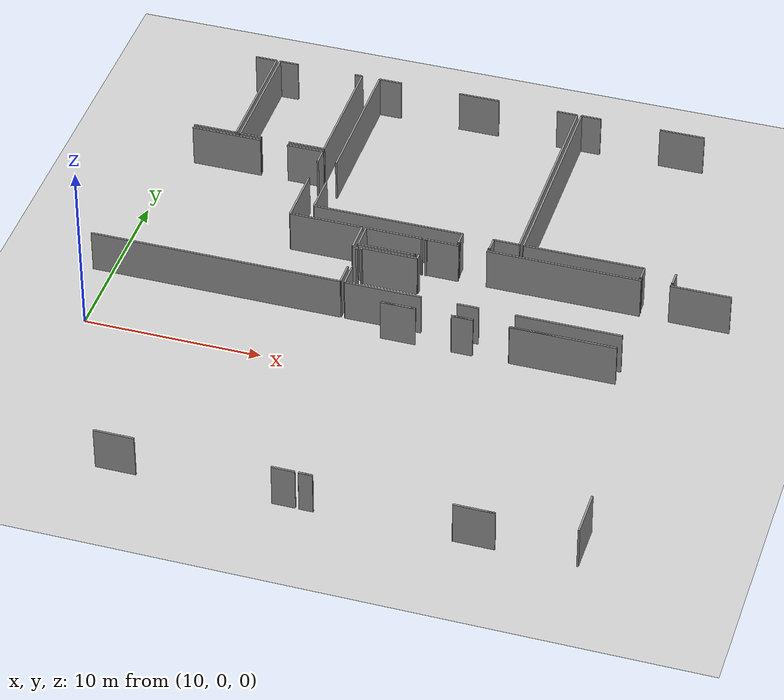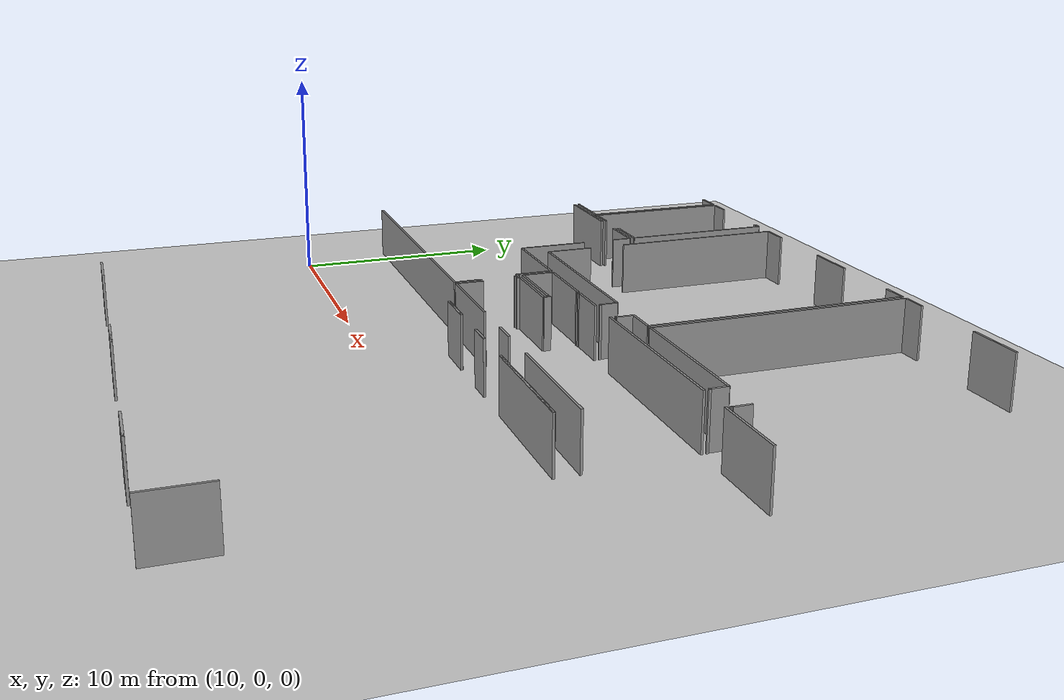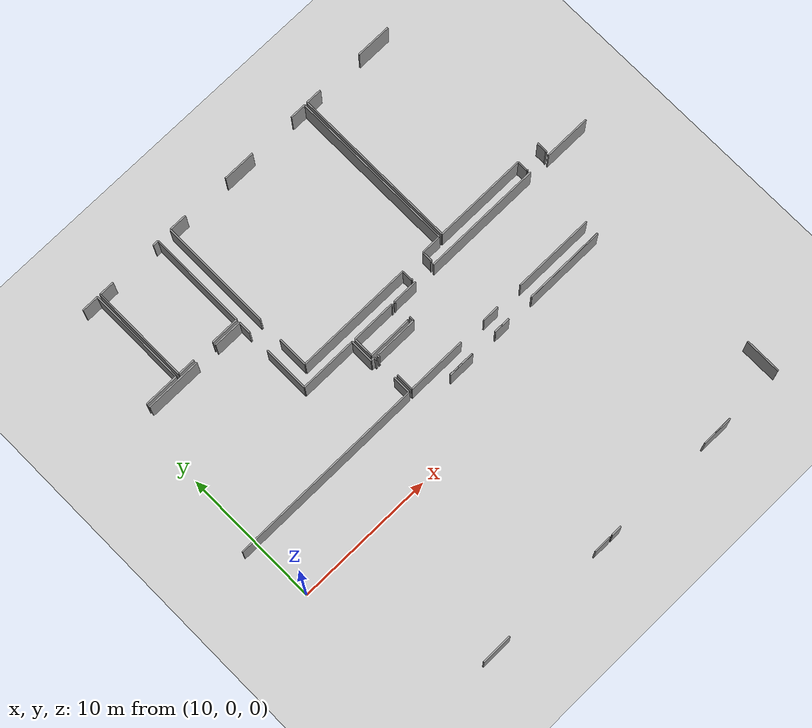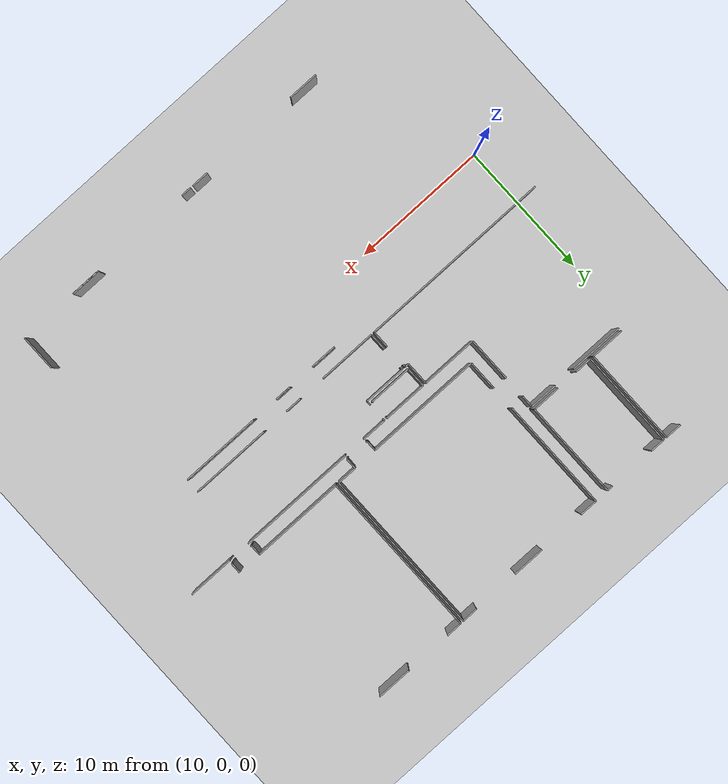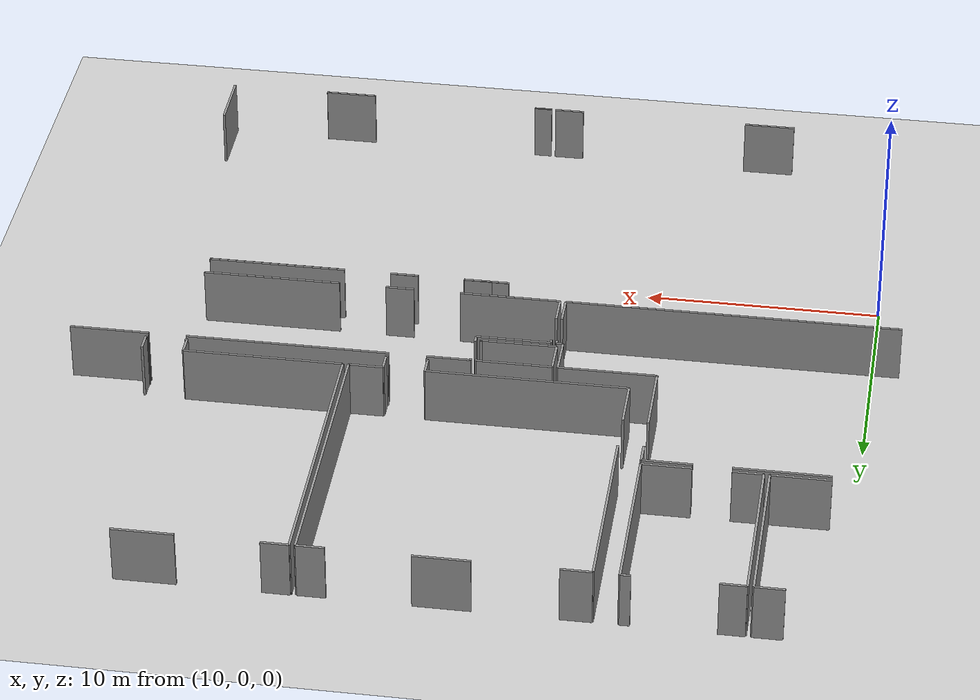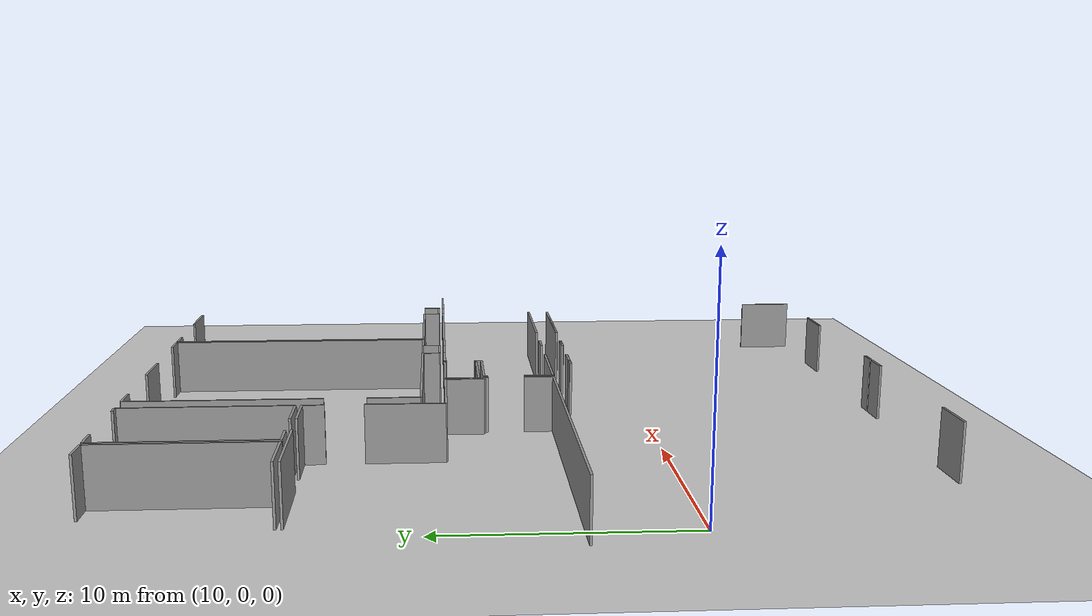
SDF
<sdf version="1.6">
 <world name="default">
  <model name="ground_plane">
   <static>1</static>
   <link name="link">
    <collision name="collision">
     <geometry><plane><normal>0 0 1</normal><size>100 100</size></plane></geometry>
     <surface><friction><ode><mu>100</mu><mu2>50</mu2></ode></friction></surface>
    </collision>
    <visual name="visual">
     <cast_shadows>0</cast_shadows>
     <geometry><plane><normal>0 0 1</normal><size>100 100</size></plane></geometry>
     <material>
      <script><uri>file://media/materials/scripts/gazebo.material</uri><name>Gazebo/Grey</name></script>
     </material>
    </visual>
   </link>
  </model>
  <model name="50010540">
   <static>1</static>
   <link name="Wall_129">
    <collision name="Wall_129_Collision">
     <geometry><box><size>1.23828226785 0.1 2.5</size></box></geometry>
     <pose>0.619141133927 0 1.25 0 0 0</pose>
    </collision>
    <visual name="Wall_129_Visual">
     <pose>0.619141133927 0 1.25 0 0 0</pose>
     <geometry><box><size>1.23828226785 0.1 2.5</size></box></geometry>
     <material>
      <script><uri>file://media/materials/scripts/gazebo.material</uri><name>Gazebo/Grey</name></script>
      <ambient>1 1 1 1</ambient>
     </material>
    </visual>
    <pose>74.7660902337 -0.460510845456 0 0 0 0.0</pose>
   </link>
   <link name="Wall_130">
    <collision name="Wall_130_Collision">
     <geometry><box><size>7.16467425499 0.1 2.5</size></box></geometry>
     <pose>3.5823371275 0 1.25 0 0 0</pose>
    </collision>
    <visual name="Wall_130_Visual">
     <pose>3.5823371275 0 1.25 0 0 0</pose>
     <geometry><box><size>7.16467425499 0.1 2.5</size></box></geometry>
     <material>
      <script><uri>file://media/materials/scripts/gazebo.material</uri><name>Gazebo/Grey</name></script>
      <ambient>1 1 1 1</ambient>
     </material>
    </visual>
    <pose>76.0043725015 -0.460510845456 0 0 0 -1.57079632679</pose>
   </link>
   <link name="Wall_131">
    <collision name="Wall_131_Collision">
     <geometry><box><size>2.51139201891 0.1 2.5</size></box></geometry>
     <pose>1.25569600946 0 1.25 0 0 0</pose>
    </collision>
    <visual name="Wall_131_Visual">
     <pose>1.25569600946 0 1.25 0 0 0</pose>
     <geometry><box><size>2.51139201891 0.1 2.5</size></box></geometry>
     <material>
      <script><uri>file://media/materials/scripts/gazebo.material</uri><name>Gazebo/Grey</name></script>
      <ambient>1 1 1 1</ambient>
     </material>
    </visual>
    <pose>76.0043725015 -7.62518510045 0 0 0 3.14159265359</pose>
   </link>
   <link name="Wall_133">
    <collision name="Wall_133_Collision">
     <geometry><box><size>7.17052120473 0.1 2.5</size></box></geometry>
     <pose>3.58526060236 0 1.25 0 0 0</pose>
    </collision>
    <visual name="Wall_133_Visual">
     <pose>3.58526060236 0 1.25 0 0 0</pose>
     <geometry><box><size>7.17052120473 0.1 2.5</size></box></geometry>
     <material>
      <script><uri>file://media/materials/scripts/gazebo.material</uri><name>Gazebo/Grey</name></script>
      <ambient>1 1 1 1</ambient>
     </material>
    </visual>
    <pose>76.2411739658 -7.63649767711 0 0 0 1.57079632679</pose>
   </link>
   <link name="Wall_134">
    <collision name="Wall_134_Collision">
     <geometry><box><size>1.08664289754 0.1 2.5</size></box></geometry>
     <pose>0.543321448772 0 1.25 0 0 0</pose>
    </collision>
    <visual name="Wall_134_Visual">
     <pose>0.543321448772 0 1.25 0 0 0</pose>
     <geometry><box><size>1.08664289754 0.1 2.5</size></box></geometry>
     <material>
      <script><uri>file://media/materials/scripts/gazebo.material</uri><name>Gazebo/Grey</name></script>
      <ambient>1 1 1 1</ambient>
     </material>
    </visual>
    <pose>76.2411739658 -0.465976472383 0 0 0 0.0</pose>
   </link>
   <link name="Wall_135">
    <collision name="Wall_135_Collision">
     <geometry><box><size>0.429750805544 0.1 2.5</size></box></geometry>
     <pose>0.214875402772 0 1.25 0 0 0</pose>
    </collision>
    <visual name="Wall_135_Visual">
     <pose>0.214875402772 0 1.25 0 0 0</pose>
     <geometry><box><size>0.429750805544 0.1 2.5</size></box></geometry>
     <material>
      <script><uri>file://media/materials/scripts/gazebo.material</uri><name>Gazebo/Grey</name></script>
      <ambient>1 1 1 1</ambient>
     </material>
    </visual>
    <pose>80.7635353709 -0.465976472383 0 0 0 0.0</pose>
   </link>
   <link name="Wall_136">
    <collision name="Wall_136_Collision">
     <geometry><box><size>7.1606068117 0.1 2.5</size></box></geometry>
     <pose>3.58030340585 0 1.25 0 0 0</pose>
    </collision>
    <visual name="Wall_136_Visual">
     <pose>3.58030340585 0 1.25 0 0 0</pose>
     <geometry><box><size>7.1606068117 0.1 2.5</size></box></geometry>
     <material>
      <script><uri>file://media/materials/scripts/gazebo.material</uri><name>Gazebo/Grey</name></script>
      <ambient>1 1 1 1</ambient>
     </material>
    </visual>
    <pose>81.1932861764 -0.465976472383 0 0 0 -1.57079632679</pose>
   </link>
   <link name="Wall_137">
    <collision name="Wall_137_Collision">
     <geometry><box><size>2.0745231876 0.1 2.5</size></box></geometry>
     <pose>1.0372615938 0 1.25 0 0 0</pose>
    </collision>
    <visual name="Wall_137_Visual">
     <pose>1.0372615938 0 1.25 0 0 0</pose>
     <geometry><box><size>2.0745231876 0.1 2.5</size></box></geometry>
     <material>
      <script><uri>file://media/materials/scripts/gazebo.material</uri><name>Gazebo/Grey</name></script>
      <ambient>1 1 1 1</ambient>
     </material>
    </visual>
    <pose>81.1932861764 -7.62658328408 0 0 0 3.14159265359</pose>
   </link>
   <link name="Wall_138">
    <collision name="Wall_138_Collision">
     <geometry><box><size>1.269208139 0.1 2.5</size></box></geometry>
     <pose>0.634604069498 0 1.25 0 0 0</pose>
    </collision>
    <visual name="Wall_138_Visual">
     <pose>0.634604069498 0 1.25 0 0 0</pose>
     <geometry><box><size>1.269208139 0.1 2.5</size></box></geometry>
     <material>
      <script><uri>file://media/materials/scripts/gazebo.material</uri><name>Gazebo/Grey</name></script>
      <ambient>1 1 1 1</ambient>
     </material>
    </visual>
    <pose>77.5103433812 -7.62658328408 0 0 0 -3.13378109491</pose>
   </link>
   <link name="Wall_141">
    <collision name="Wall_141_Collision">
     <geometry><box><size>4.02435381672 0.1 2.5</size></box></geometry>
     <pose>2.01217690836 0 1.25 0 0 0</pose>
    </collision>
    <visual name="Wall_141_Visual">
     <pose>2.01217690836 0 1.25 0 0 0</pose>
     <geometry><box><size>4.02435381672 0.1 2.5</size></box></geometry>
     <material>
      <script><uri>file://media/materials/scripts/gazebo.material</uri><name>Gazebo/Grey</name></script>
      <ambient>1 1 1 1</ambient>
     </material>
    </visual>
    <pose>73.5037846289 -7.8739346794 0 0 0 0.0</pose>
   </link>
   <link name="Wall_142">
    <collision name="Wall_142_Collision">
     <geometry><box><size>2.07820930809 0.1 2.5</size></box></geometry>
     <pose>1.03910465404 0 1.25 0 0 0</pose>
    </collision>
    <visual name="Wall_142_Visual">
     <pose>1.03910465404 0 1.25 0 0 0</pose>
     <geometry><box><size>2.07820930809 0.1 2.5</size></box></geometry>
     <material>
      <script><uri>file://media/materials/scripts/gazebo.material</uri><name>Gazebo/Grey</name></script>
      <ambient>1 1 1 1</ambient>
     </material>
    </visual>
    <pose>79.1192714192 -7.8739346794 0 0 0 0.0</pose>
   </link>
   <link name="Wall_143">
    <collision name="Wall_143_Collision">
     <geometry><box><size>0.914284987957 0.1 2.5</size></box></geometry>
     <pose>0.457142493978 0 1.25 0 0 0</pose>
    </collision>
    <visual name="Wall_143_Visual">
     <pose>0.457142493978 0 1.25 0 0 0</pose>
     <geometry><box><size>0.914284987957 0.1 2.5</size></box></geometry>
     <material>
      <script><uri>file://media/materials/scripts/gazebo.material</uri><name>Gazebo/Grey</name></script>
      <ambient>1 1 1 1</ambient>
     </material>
    </visual>
    <pose>81.1974807273 -7.8739346794 0 0 0 -1.57079632679</pose>
   </link>
   <link name="Wall_144">
    <collision name="Wall_144_Collision">
     <geometry><box><size>3.30822958175 0.1 2.5</size></box></geometry>
     <pose>1.65411479088 0 1.25 0 0 0</pose>
    </collision>
    <visual name="Wall_144_Visual">
     <pose>1.65411479088 0 1.25 0 0 0</pose>
     <geometry><box><size>3.30822958175 0.1 2.5</size></box></geometry>
     <material>
      <script><uri>file://media/materials/scripts/gazebo.material</uri><name>Gazebo/Grey</name></script>
      <ambient>1 1 1 1</ambient>
     </material>
    </visual>
    <pose>81.1974807273 -10.3824032234 0 0 0 -1.57079632679</pose>
   </link>
   <link name="Wall_145">
    <collision name="Wall_145_Collision">
     <geometry><box><size>4.13671693772 0.1 2.5</size></box></geometry>
     <pose>2.06835846886 0 1.25 0 0 0</pose>
    </collision>
    <visual name="Wall_145_Visual">
     <pose>2.06835846886 0 1.25 0 0 0</pose>
     <geometry><box><size>4.13671693772 0.1 2.5</size></box></geometry>
     <material>
      <script><uri>file://media/materials/scripts/gazebo.material</uri><name>Gazebo/Grey</name></script>
      <ambient>1 1 1 1</ambient>
     </material>
    </visual>
    <pose>81.1974807273 -13.6906328052 0 0 0 0.0</pose>
   </link>
   <link name="Wall_146">
    <collision name="Wall_146_Collision">
     <geometry><box><size>1.70222501859 0.1 2.5</size></box></geometry>
     <pose>0.851112509295 0 1.25 0 0 0</pose>
    </collision>
    <visual name="Wall_146_Visual">
     <pose>0.851112509295 0 1.25 0 0 0</pose>
     <geometry><box><size>1.70222501859 0.1 2.5</size></box></geometry>
     <material>
      <script><uri>file://media/materials/scripts/gazebo.material</uri><name>Gazebo/Grey</name></script>
      <ambient>1 1 1 1</ambient>
     </material>
    </visual>
    <pose>85.334197665 -13.6906328052 0 0 0 -1.57079632679</pose>
   </link>
   <link name="Wall_147">
    <collision name="Wall_147_Collision">
     <geometry><box><size>0.275060852765 0.1 2.5</size></box></geometry>
     <pose>0.137530426382 0 1.25 0 0 0</pose>
    </collision>
    <visual name="Wall_147_Visual">
     <pose>0.137530426382 0 1.25 0 0 0</pose>
     <geometry><box><size>0.275060852765 0.1 2.5</size></box></geometry>
     <material>
      <script><uri>file://media/materials/scripts/gazebo.material</uri><name>Gazebo/Grey</name></script>
      <ambient>1 1 1 1</ambient>
     </material>
    </visual>
    <pose>85.334197665 -15.3928578238 0 0 0 0.0</pose>
   </link>
   <link name="Wall_148">
    <collision name="Wall_148_Collision">
     <geometry><box><size>0.197143892162 0.1 2.5</size></box></geometry>
     <pose>0.098571946081 0 1.25 0 0 0</pose>
    </collision>
    <visual name="Wall_148_Visual">
     <pose>0.098571946081 0 1.25 0 0 0</pose>
     <geometry><box><size>0.197143892162 0.1 2.5</size></box></geometry>
     <material>
      <script><uri>file://media/materials/scripts/gazebo.material</uri><name>Gazebo/Grey</name></script>
      <ambient>1 1 1 1</ambient>
     </material>
    </visual>
    <pose>85.6092585178 -15.3928578238 0 0 0 -1.57079632679</pose>
   </link>
   <link name="Wall_149">
    <collision name="Wall_149_Collision">
     <geometry><box><size>1.29281142952 0.1 2.5</size></box></geometry>
     <pose>0.646405714758 0 1.25 0 0 0</pose>
    </collision>
    <visual name="Wall_149_Visual">
     <pose>0.646405714758 0 1.25 0 0 0</pose>
     <geometry><box><size>1.29281142952 0.1 2.5</size></box></geometry>
     <material>
      <script><uri>file://media/materials/scripts/gazebo.material</uri><name>Gazebo/Grey</name></script>
      <ambient>1 1 1 1</ambient>
     </material>
    </visual>
    <pose>85.6092585178 -17.164356486 0 0 0 -1.57079632679</pose>
   </link>
   <link name="Wall_150">
    <collision name="Wall_150_Collision">
     <geometry><box><size>14.2640152021 0.1 2.5</size></box></geometry>
     <pose>7.13200760103 0 1.25 0 0 0</pose>
    </collision>
    <visual name="Wall_150_Visual">
     <pose>7.13200760103 0 1.25 0 0 0</pose>
     <geometry><box><size>14.2640152021 0.1 2.5</size></box></geometry>
     <material>
      <script><uri>file://media/materials/scripts/gazebo.material</uri><name>Gazebo/Grey</name></script>
      <ambient>1 1 1 1</ambient>
     </material>
    </visual>
    <pose>85.6092585178 -18.4571679155 0 0 0 3.14159265359</pose>
   </link>
   <link name="Wall_152">
    <collision name="Wall_152_Collision">
     <geometry><box><size>2.21815477893 0.1 2.5</size></box></geometry>
     <pose>1.10907738946 0 1.25 0 0 0</pose>
    </collision>
    <visual name="Wall_152_Visual">
     <pose>1.10907738946 0 1.25 0 0 0</pose>
     <geometry><box><size>2.21815477893 0.1 2.5</size></box></geometry>
     <material>
      <script><uri>file://media/materials/scripts/gazebo.material</uri><name>Gazebo/Grey</name></script>
      <ambient>1 1 1 1</ambient>
     </material>
    </visual>
    <pose>82.2406528246 -12.6638575886 0 0 0 1.57079632679</pose>
   </link>
   <link name="Wall_153">
    <collision name="Wall_153_Collision">
     <geometry><box><size>8.20975296637 0.1 2.5</size></box></geometry>
     <pose>4.10487648319 0 1.25 0 0 0</pose>
    </collision>
    <visual name="Wall_153_Visual">
     <pose>4.10487648319 0 1.25 0 0 0</pose>
     <geometry><box><size>8.20975296637 0.1 2.5</size></box></geometry>
     <material>
      <script><uri>file://media/materials/scripts/gazebo.material</uri><name>Gazebo/Grey</name></script>
      <ambient>1 1 1 1</ambient>
     </material>
    </visual>
    <pose>82.2406528246 -8.67789026801 0 0 0 1.57079632679</pose>
   </link>
   <link name="Wall_154">
    <collision name="Wall_154_Collision">
     <geometry><box><size>1.30577640502 0.1 2.5</size></box></geometry>
     <pose>0.652888202508 0 1.25 0 0 0</pose>
    </collision>
    <visual name="Wall_154_Visual">
     <pose>0.652888202508 0 1.25 0 0 0</pose>
     <geometry><box><size>1.30577640502 0.1 2.5</size></box></geometry>
     <material>
      <script><uri>file://media/materials/scripts/gazebo.material</uri><name>Gazebo/Grey</name></script>
      <ambient>1 1 1 1</ambient>
     </material>
    </visual>
    <pose>82.2406528246 -0.468137301633 0 0 0 0.0</pose>
   </link>
   <link name="Wall_155">
    <collision name="Wall_155_Collision">
     <geometry><box><size>2.359625541 0.1 2.5</size></box></geometry>
     <pose>1.1798127705 0 1.25 0 0 0</pose>
    </collision>
    <visual name="Wall_155_Visual">
     <pose>1.1798127705 0 1.25 0 0 0</pose>
     <geometry><box><size>2.359625541 0.1 2.5</size></box></geometry>
     <material>
      <script><uri>file://media/materials/scripts/gazebo.material</uri><name>Gazebo/Grey</name></script>
      <ambient>1 1 1 1</ambient>
     </material>
    </visual>
    <pose>87.0150686063 -0.468137301633 0 0 0 0.0</pose>
   </link>
   <link name="Wall_156">
    <collision name="Wall_156_Collision">
     <geometry><box><size>1.17282185234 0.1 2.5</size></box></geometry>
     <pose>0.58641092617 0 1.25 0 0 0</pose>
    </collision>
    <visual name="Wall_156_Visual">
     <pose>0.58641092617 0 1.25 0 0 0</pose>
     <geometry><box><size>1.17282185234 0.1 2.5</size></box></geometry>
     <material>
      <script><uri>file://media/materials/scripts/gazebo.material</uri><name>Gazebo/Grey</name></script>
      <ambient>1 1 1 1</ambient>
     </material>
    </visual>
    <pose>92.7936344512 -0.468137301633 0 0 0 0.0</pose>
   </link>
   <link name="Wall_157">
    <collision name="Wall_157_Collision">
     <geometry><box><size>12.196991363 0.1 2.5</size></box></geometry>
     <pose>6.09849568152 0 1.25 0 0 0</pose>
    </collision>
    <visual name="Wall_157_Visual">
     <pose>6.09849568152 0 1.25 0 0 0</pose>
     <geometry><box><size>12.196991363 0.1 2.5</size></box></geometry>
     <material>
      <script><uri>file://media/materials/scripts/gazebo.material</uri><name>Gazebo/Grey</name></script>
      <ambient>1 1 1 1</ambient>
     </material>
    </visual>
    <pose>93.9664563036 -0.468137301633 0 0 0 -1.57079632679</pose>
   </link>
   <link name="Wall_158">
    <collision name="Wall_158_Collision">
     <geometry><box><size>1.45271279402 0.1 2.5</size></box></geometry>
     <pose>0.726356397008 0 1.25 0 0 0</pose>
    </collision>
    <visual name="Wall_158_Visual">
     <pose>0.726356397008 0 1.25 0 0 0</pose>
     <geometry><box><size>1.45271279402 0.1 2.5</size></box></geometry>
     <material>
      <script><uri>file://media/materials/scripts/gazebo.material</uri><name>Gazebo/Grey</name></script>
      <ambient>1 1 1 1</ambient>
     </material>
    </visual>
    <pose>93.9664563036 -12.6651286647 0 0 0 3.14159265359</pose>
   </link>
   <link name="Wall_159">
    <collision name="Wall_159_Collision">
     <geometry><box><size>0.788702676251 0.1 2.5</size></box></geometry>
     <pose>0.394351338125 0 1.25 0 0 0</pose>
    </collision>
    <visual name="Wall_159_Visual">
     <pose>0.394351338125 0 1.25 0 0 0</pose>
     <geometry><box><size>0.788702676251 0.1 2.5</size></box></geometry>
     <material>
      <script><uri>file://media/materials/scripts/gazebo.material</uri><name>Gazebo/Grey</name></script>
      <ambient>1 1 1 1</ambient>
     </material>
    </visual>
    <pose>92.5137435096 -12.6651286647 0 0 0 -1.57079632679</pose>
   </link>
   <link name="Wall_160">
    <collision name="Wall_160_Collision">
     <geometry><box><size>0.0932969805589 0.1 2.5</size></box></geometry>
     <pose>0.0466484902794 0 1.25 0 0 0</pose>
    </collision>
    <visual name="Wall_160_Visual">
     <pose>0.0466484902794 0 1.25 0 0 0</pose>
     <geometry><box><size>0.0932969805589 0.1 2.5</size></box></geometry>
     <material>
      <script><uri>file://media/materials/scripts/gazebo.material</uri><name>Gazebo/Grey</name></script>
      <ambient>1 1 1 1</ambient>
     </material>
    </visual>
    <pose>92.5137435096 -13.4538313409 0 0 0 3.14159265359</pose>
   </link>
   <link name="Wall_161">
    <collision name="Wall_161_Collision">
     <geometry><box><size>0.0902463980883 0.1 2.5</size></box></geometry>
     <pose>0.0451231990442 0 1.25 0 0 0</pose>
    </collision>
    <visual name="Wall_161_Visual">
     <pose>0.0451231990442 0 1.25 0 0 0</pose>
     <geometry><box><size>0.0902463980883 0.1 2.5</size></box></geometry>
     <material>
      <script><uri>file://media/materials/scripts/gazebo.material</uri><name>Gazebo/Grey</name></script>
      <ambient>1 1 1 1</ambient>
     </material>
    </visual>
    <pose>90.8382110876 -13.4538313409 0 0 0 3.14159265359</pose>
   </link>
   <link name="Wall_162">
    <collision name="Wall_162_Collision">
     <geometry><box><size>0.790355075089 0.1 2.5</size></box></geometry>
     <pose>0.395177537544 0 1.25 0 0 0</pose>
    </collision>
    <visual name="Wall_162_Visual">
     <pose>0.395177537544 0 1.25 0 0 0</pose>
     <geometry><box><size>0.790355075089 0.1 2.5</size></box></geometry>
     <material>
      <script><uri>file://media/materials/scripts/gazebo.material</uri><name>Gazebo/Grey</name></script>
      <ambient>1 1 1 1</ambient>
     </material>
    </visual>
    <pose>90.7479646895 -13.4538313409 0 0 0 1.57079632679</pose>
   </link>
   <link name="Wall_163">
    <collision name="Wall_163_Collision">
     <geometry><box><size>8.50731187341 0.1 2.5</size></box></geometry>
     <pose>4.2536559367 0 1.25 0 0 0</pose>
    </collision>
    <visual name="Wall_163_Visual">
     <pose>4.2536559367 0 1.25 0 0 0</pose>
     <geometry><box><size>8.50731187341 0.1 2.5</size></box></geometry>
     <material>
      <script><uri>file://media/materials/scripts/gazebo.material</uri><name>Gazebo/Grey</name></script>
      <ambient>1 1 1 1</ambient>
     </material>
    </visual>
    <pose>90.7479646895 -12.6634762658 0 0 0 -3.14154783064</pose>
   </link>
   <link name="Wall_164">
    <collision name="Wall_164_Collision">
     <geometry><box><size>1.46898256719 0.1 2.5</size></box></geometry>
     <pose>0.734491283596 0 1.25 0 0 0</pose>
    </collision>
    <visual name="Wall_164_Visual">
     <pose>0.734491283596 0 1.25 0 0 0</pose>
     <geometry><box><size>1.46898256719 0.1 2.5</size></box></geometry>
     <material>
      <script><uri>file://media/materials/scripts/gazebo.material</uri><name>Gazebo/Grey</name></script>
      <ambient>1 1 1 1</ambient>
     </material>
    </visual>
    <pose>85.5706178065 -15.1596153724 0 0 0 1.57079632679</pose>
   </link>
   <link name="Wall_165">
    <collision name="Wall_165_Collision">
     <geometry><box><size>3.19141769465 0.1 2.5</size></box></geometry>
     <pose>1.59570884732 0 1.25 0 0 0</pose>
    </collision>
    <visual name="Wall_165_Visual">
     <pose>1.59570884732 0 1.25 0 0 0</pose>
     <geometry><box><size>3.19141769465 0.1 2.5</size></box></geometry>
     <material>
      <script><uri>file://media/materials/scripts/gazebo.material</uri><name>Gazebo/Grey</name></script>
      <ambient>1 1 1 1</ambient>
     </material>
    </visual>
    <pose>85.5706178065 -13.6906328052 0 0 0 0.0</pose>
   </link>
   <link name="Wall_166">
    <collision name="Wall_166_Collision">
     <geometry><box><size>0.0959662402207 0.1 2.5</size></box></geometry>
     <pose>0.0479831201103 0 1.25 0 0 0</pose>
    </collision>
    <visual name="Wall_166_Visual">
     <pose>0.0479831201103 0 1.25 0 0 0</pose>
     <geometry><box><size>0.0959662402207 0.1 2.5</size></box></geometry>
     <material>
      <script><uri>file://media/materials/scripts/gazebo.material</uri><name>Gazebo/Grey</name></script>
      <ambient>1 1 1 1</ambient>
     </material>
    </visual>
    <pose>88.7620355012 -13.6906328052 0 0 0 -1.57079632679</pose>
   </link>
   <link name="Wall_167">
    <collision name="Wall_167_Collision">
     <geometry><box><size>0.0683838903824 0.1 2.5</size></box></geometry>
     <pose>0.0341919451912 0 1.25 0 0 0</pose>
    </collision>
    <visual name="Wall_167_Visual">
     <pose>0.0341919451912 0 1.25 0 0 0</pose>
     <geometry><box><size>0.0683838903824 0.1 2.5</size></box></geometry>
     <material>
      <script><uri>file://media/materials/scripts/gazebo.material</uri><name>Gazebo/Grey</name></script>
      <ambient>1 1 1 1</ambient>
     </material>
    </visual>
    <pose>88.7620355012 -15.0775038609 0 0 0 -1.57079632679</pose>
   </link>
   <link name="Wall_168">
    <collision name="Wall_168_Collision">
     <geometry><box><size>3.19144721863 0.1 2.5</size></box></geometry>
     <pose>1.59572360932 0 1.25 0 0 0</pose>
    </collision>
    <visual name="Wall_168_Visual">
     <pose>1.59572360932 0 1.25 0 0 0</pose>
     <geometry><box><size>3.19144721863 0.1 2.5</size></box></geometry>
     <material>
      <script><uri>file://media/materials/scripts/gazebo.material</uri><name>Gazebo/Grey</name></script>
      <ambient>1 1 1 1</ambient>
     </material>
    </visual>
    <pose>88.7620355012 -15.1458877513 0 0 0 -3.13729126224</pose>
   </link>
   <link name="Wall_169">
    <collision name="Wall_169_Collision">
     <geometry><box><size>12.2066515409 0.1 2.5</size></box></geometry>
     <pose>6.10332577043 0 1.25 0 0 0</pose>
    </collision>
    <visual name="Wall_169_Visual">
     <pose>6.10332577043 0 1.25 0 0 0</pose>
     <geometry><box><size>12.2066515409 0.1 2.5</size></box></geometry>
     <material>
      <script><uri>file://media/materials/scripts/gazebo.material</uri><name>Gazebo/Grey</name></script>
      <ambient>1 1 1 1</ambient>
     </material>
    </visual>
    <pose>94.2046559515 -12.663094943 0 0 0 1.57079632679</pose>
   </link>
   <link name="Wall_170">
    <collision name="Wall_170_Collision">
     <geometry><box><size>1.15871290841 0.1 2.5</size></box></geometry>
     <pose>0.579356454206 0 1.25 0 0 0</pose>
    </collision>
    <visual name="Wall_170_Visual">
     <pose>0.579356454206 0 1.25 0 0 0</pose>
     <geometry><box><size>1.15871290841 0.1 2.5</size></box></geometry>
     <material>
      <script><uri>file://media/materials/scripts/gazebo.material</uri><name>Gazebo/Grey</name></script>
      <ambient>1 1 1 1</ambient>
     </material>
    </visual>
    <pose>94.2046559515 -0.456443402162 0 0 0 0.0</pose>
   </link>
   <link name="Wall_171">
    <collision name="Wall_171_Collision">
     <geometry><box><size>2.57786929525 0.1 2.5</size></box></geometry>
     <pose>1.28893464763 0 1.25 0 0 0</pose>
    </collision>
    <visual name="Wall_171_Visual">
     <pose>1.28893464763 0 1.25 0 0 0</pose>
     <geometry><box><size>2.57786929525 0.1 2.5</size></box></geometry>
     <material>
      <script><uri>file://media/materials/scripts/gazebo.material</uri><name>Gazebo/Grey</name></script>
      <ambient>1 1 1 1</ambient>
     </material>
    </visual>
    <pose>98.7896814048 -0.456443402162 0 0 0 0.0</pose>
   </link>
   <link name="Wall_180">
    <collision name="Wall_180_Collision">
     <geometry><box><size>0.802048974559 0.1 2.5</size></box></geometry>
     <pose>0.40102448728 0 1.25 0 0 0</pose>
    </collision>
    <visual name="Wall_180_Visual">
     <pose>0.40102448728 0 1.25 0 0 0</pose>
     <geometry><box><size>0.802048974559 0.1 2.5</size></box></geometry>
     <material>
      <script><uri>file://media/materials/scripts/gazebo.material</uri><name>Gazebo/Grey</name></script>
      <ambient>1 1 1 1</ambient>
     </material>
    </visual>
    <pose>102.721500887 -12.6592817149 0 0 0 -1.57079632679</pose>
   </link>
   <link name="Wall_181">
    <collision name="Wall_181_Collision">
     <geometry><box><size>0.0816030810883 0.1 2.5</size></box></geometry>
     <pose>0.0408015405441 0 1.25 0 0 0</pose>
    </collision>
    <visual name="Wall_181_Visual">
     <pose>0.0408015405441 0 1.25 0 0 0</pose>
     <geometry><box><size>0.0816030810883 0.1 2.5</size></box></geometry>
     <material>
      <script><uri>file://media/materials/scripts/gazebo.material</uri><name>Gazebo/Grey</name></script>
      <ambient>1 1 1 1</ambient>
     </material>
    </visual>
    <pose>102.721500887 -13.4613306895 0 0 0 3.14159265359</pose>
   </link>
   <link name="Wall_182">
    <collision name="Wall_182_Collision">
     <geometry><box><size>0.0905006132942 0.1 2.5</size></box></geometry>
     <pose>0.0452503066471 0 1.25 0 0 0</pose>
    </collision>
    <visual name="Wall_182_Visual">
     <pose>0.0452503066471 0 1.25 0 0 0</pose>
     <geometry><box><size>0.0905006132942 0.1 2.5</size></box></geometry>
     <material>
      <script><uri>file://media/materials/scripts/gazebo.material</uri><name>Gazebo/Grey</name></script>
      <ambient>1 1 1 1</ambient>
     </material>
    </visual>
    <pose>101.051561199 -13.4613306895 0 0 0 3.14159265359</pose>
   </link>
   <link name="Wall_183">
    <collision name="Wall_183_Collision">
     <geometry><box><size>0.795439379206 0.1 2.5</size></box></geometry>
     <pose>0.397719689603 0 1.25 0 0 0</pose>
    </collision>
    <visual name="Wall_183_Visual">
     <pose>0.397719689603 0 1.25 0 0 0</pose>
     <geometry><box><size>0.795439379206 0.1 2.5</size></box></geometry>
     <material>
      <script><uri>file://media/materials/scripts/gazebo.material</uri><name>Gazebo/Grey</name></script>
      <ambient>1 1 1 1</ambient>
     </material>
    </visual>
    <pose>100.961060586 -13.4613306895 0 0 0 1.57079632679</pose>
   </link>
   <link name="Wall_184">
    <collision name="Wall_184_Collision">
     <geometry><box><size>6.75640521303 0.1 2.5</size></box></geometry>
     <pose>3.37820260651 0 1.25 0 0 0</pose>
    </collision>
    <visual name="Wall_184_Visual">
     <pose>3.37820260651 0 1.25 0 0 0</pose>
     <geometry><box><size>6.75640521303 0.1 2.5</size></box></geometry>
     <material>
      <script><uri>file://media/materials/scripts/gazebo.material</uri><name>Gazebo/Grey</name></script>
      <ambient>1 1 1 1</ambient>
     </material>
    </visual>
    <pose>100.961060586 -12.6658913103 0 0 0 3.14117876969</pose>
   </link>
   <link name="Wall_185">
    <collision name="Wall_185_Collision">
     <geometry><box><size>1.28887109382 0.1 2.5</size></box></geometry>
     <pose>0.644435546912 0 1.25 0 0 0</pose>
    </collision>
    <visual name="Wall_185_Visual">
     <pose>0.644435546912 0 1.25 0 0 0</pose>
     <geometry><box><size>1.28887109382 0.1 2.5</size></box></geometry>
     <material>
      <script><uri>file://media/materials/scripts/gazebo.material</uri><name>Gazebo/Grey</name></script>
      <ambient>1 1 1 1</ambient>
     </material>
    </visual>
    <pose>85.8506358558 -18.4604727132 0 0 0 1.57079632679</pose>
   </link>
   <link name="Wall_186">
    <collision name="Wall_186_Collision">
     <geometry><box><size>0.181636764603 0.1 2.5</size></box></geometry>
     <pose>0.0908183823015 0 1.25 0 0 0</pose>
    </collision>
    <visual name="Wall_186_Visual">
     <pose>0.0908183823015 0 1.25 0 0 0</pose>
     <geometry><box><size>0.181636764603 0.1 2.5</size></box></geometry>
     <material>
      <script><uri>file://media/materials/scripts/gazebo.material</uri><name>Gazebo/Grey</name></script>
      <ambient>1 1 1 1</ambient>
     </material>
    </visual>
    <pose>85.8506358558 -15.5802144305 0 0 0 1.57079632679</pose>
   </link>
   <link name="Wall_187">
    <collision name="Wall_187_Collision">
     <geometry><box><size>3.146167388 0.1 2.5</size></box></geometry>
     <pose>1.573083694 0 1.25 0 0 0</pose>
    </collision>
    <visual name="Wall_187_Visual">
     <pose>1.573083694 0 1.25 0 0 0</pose>
     <geometry><box><size>3.146167388 0.1 2.5</size></box></geometry>
     <material>
      <script><uri>file://media/materials/scripts/gazebo.material</uri><name>Gazebo/Grey</name></script>
      <ambient>1 1 1 1</ambient>
     </material>
    </visual>
    <pose>85.8506358558 -15.3985776659 0 0 0 0.0</pose>
   </link>
   <link name="Wall_188">
    <collision name="Wall_188_Collision">
     <geometry><box><size>0.33925019225 0.1 2.5</size></box></geometry>
     <pose>0.169625096125 0 1.25 0 0 0</pose>
    </collision>
    <visual name="Wall_188_Visual">
     <pose>0.169625096125 0 1.25 0 0 0</pose>
     <geometry><box><size>0.33925019225 0.1 2.5</size></box></geometry>
     <material>
      <script><uri>file://media/materials/scripts/gazebo.material</uri><name>Gazebo/Grey</name></script>
      <ambient>1 1 1 1</ambient>
     </material>
    </visual>
    <pose>88.9968032438 -15.3985776659 0 0 0 1.57079632679</pose>
   </link>
   <link name="Wall_189">
    <collision name="Wall_189_Collision">
     <geometry><box><size>0.0911361513089 0.1 2.5</size></box></geometry>
     <pose>0.0455680756544 0 1.25 0 0 0</pose>
    </collision>
    <visual name="Wall_189_Visual">
     <pose>0.0455680756544 0 1.25 0 0 0</pose>
     <geometry><box><size>0.0911361513089 0.1 2.5</size></box></geometry>
     <material>
      <script><uri>file://media/materials/scripts/gazebo.material</uri><name>Gazebo/Grey</name></script>
      <ambient>1 1 1 1</ambient>
     </material>
    </visual>
    <pose>88.9968032438 -13.7865990454 0 0 0 1.57079632679</pose>
   </link>
   <link name="Wall_190">
    <collision name="Wall_190_Collision">
     <geometry><box><size>1.84483974909 0.1 2.5</size></box></geometry>
     <pose>0.922419874545 0 1.25 0 0 0</pose>
    </collision>
    <visual name="Wall_190_Visual">
     <pose>0.922419874545 0 1.25 0 0 0</pose>
     <geometry><box><size>1.84483974909 0.1 2.5</size></box></geometry>
     <material>
      <script><uri>file://media/materials/scripts/gazebo.material</uri><name>Gazebo/Grey</name></script>
      <ambient>1 1 1 1</ambient>
     </material>
    </visual>
    <pose>88.9968032438 -13.6954628941 0 0 0 0.0</pose>
   </link>
   <link name="Wall_191">
    <collision name="Wall_191_Collision">
     <geometry><box><size>8.6213273847 0.1 2.5</size></box></geometry>
     <pose>4.31066369235 0 1.25 0 0 0</pose>
    </collision>
    <visual name="Wall_191_Visual">
     <pose>4.31066369235 0 1.25 0 0 0</pose>
     <geometry><box><size>8.6213273847 0.1 2.5</size></box></geometry>
     <material>
      <script><uri>file://media/materials/scripts/gazebo.material</uri><name>Gazebo/Grey</name></script>
      <ambient>1 1 1 1</ambient>
     </material>
    </visual>
    <pose>92.4276916624 -13.6954628941 0 0 0 0.0</pose>
   </link>
   <link name="Wall_192">
    <collision name="Wall_192_Collision">
     <geometry><box><size>3.37750322536 0.1 2.5</size></box></geometry>
     <pose>1.68875161268 0 1.25 0 0 0</pose>
    </collision>
    <visual name="Wall_192_Visual">
     <pose>1.68875161268 0 1.25 0 0 0</pose>
     <geometry><box><size>3.37750322536 0.1 2.5</size></box></geometry>
     <material>
      <script><uri>file://media/materials/scripts/gazebo.material</uri><name>Gazebo/Grey</name></script>
      <ambient>1 1 1 1</ambient>
     </material>
    </visual>
    <pose>102.646126078 -13.6954628941 0 0 0 0.0</pose>
   </link>
   <link name="Wall_196">
    <collision name="Wall_196_Collision">
     <geometry><box><size>5.89143739633 0.1 2.5</size></box></geometry>
     <pose>2.94571869816 0 1.25 0 0 0</pose>
    </collision>
    <visual name="Wall_196_Visual">
     <pose>2.94571869816 0 1.25 0 0 0</pose>
     <geometry><box><size>5.89143739633 0.1 2.5</size></box></geometry>
     <material>
      <script><uri>file://media/materials/scripts/gazebo.material</uri><name>Gazebo/Grey</name></script>
      <ambient>1 1 1 1</ambient>
     </material>
    </visual>
    <pose>101.241587066 -18.4598371752 0 0 0 3.14159265359</pose>
   </link>
   <link name="Wall_197">
    <collision name="Wall_197_Collision">
     <geometry><box><size>1.21311496247 0.1 2.5</size></box></geometry>
     <pose>0.606557481236 0 1.25 0 0 0</pose>
    </collision>
    <visual name="Wall_197_Visual">
     <pose>0.606557481236 0 1.25 0 0 0</pose>
     <geometry><box><size>1.21311496247 0.1 2.5</size></box></geometry>
     <material>
      <script><uri>file://media/materials/scripts/gazebo.material</uri><name>Gazebo/Grey</name></script>
      <ambient>1 1 1 1</ambient>
     </material>
    </visual>
    <pose>93.3497302141 -18.4598371752 0 0 0 3.14159265359</pose>
   </link>
   <link name="Wall_198">
    <collision name="Wall_198_Collision">
     <geometry><box><size>4.28911900074 0.1 2.5</size></box></geometry>
     <pose>2.14455950037 0 1.25 0 0 0</pose>
    </collision>
    <visual name="Wall_198_Visual">
     <pose>2.14455950037 0 1.25 0 0 0</pose>
     <geometry><box><size>4.28911900074 0.1 2.5</size></box></geometry>
     <material>
      <script><uri>file://media/materials/scripts/gazebo.material</uri><name>Gazebo/Grey</name></script>
      <ambient>1 1 1 1</ambient>
     </material>
    </visual>
    <pose>90.1397548094 -18.4598371752 0 0 0 -3.1414444791</pose>
   </link>
   <link name="Wall_260">
    <collision name="Wall_260_Collision">
     <geometry><box><size>1.27705008675 0.1 2.5</size></box></geometry>
     <pose>0.638525043375 0 1.25 0 0 0</pose>
    </collision>
    <visual name="Wall_260_Visual">
     <pose>0.638525043375 0 1.25 0 0 0</pose>
     <geometry><box><size>1.27705008675 0.1 2.5</size></box></geometry>
     <material>
      <script><uri>file://media/materials/scripts/gazebo.material</uri><name>Gazebo/Grey</name></script>
      <ambient>1 1 1 1</ambient>
     </material>
    </visual>
    <pose>88.0006609595 -33.5590764362 0 0 0 3.14159265359</pose>
   </link>
   <link name="Wall_261">
    <collision name="Wall_261_Collision">
     <geometry><box><size>2.22845049477 0.1 2.5</size></box></geometry>
     <pose>1.11422524738 0 1.25 0 0 0</pose>
    </collision>
    <visual name="Wall_261_Visual">
     <pose>1.11422524738 0 1.25 0 0 0</pose>
     <geometry><box><size>2.22845049477 0.1 2.5</size></box></geometry>
     <material>
      <script><uri>file://media/materials/scripts/gazebo.material</uri><name>Gazebo/Grey</name></script>
      <ambient>1 1 1 1</ambient>
     </material>
    </visual>
    <pose>79.3396760027 -33.5590764362 0 0 0 3.14159265359</pose>
   </link>
   <link name="Wall_264">
    <collision name="Wall_264_Collision">
     <geometry><box><size>1.94614450863 0.1 2.5</size></box></geometry>
     <pose>0.973072254317 0 1.25 0 0 0</pose>
    </collision>
    <visual name="Wall_264_Visual">
     <pose>0.973072254317 0 1.25 0 0 0</pose>
     <geometry><box><size>1.94614450863 0.1 2.5</size></box></geometry>
     <material>
      <script><uri>file://media/materials/scripts/gazebo.material</uri><name>Gazebo/Grey</name></script>
      <ambient>1 1 1 1</ambient>
     </material>
    </visual>
    <pose>88.1838230154 -19.4889003286 0 0 0 0.0</pose>
   </link>
   <link name="Wall_265">
    <collision name="Wall_265_Collision">
     <geometry><box><size>1.1926506384 0.1 2.5</size></box></geometry>
     <pose>0.596325319199 0 1.25 0 0 0</pose>
    </collision>
    <visual name="Wall_265_Visual">
     <pose>0.596325319199 0 1.25 0 0 0</pose>
     <geometry><box><size>1.1926506384 0.1 2.5</size></box></geometry>
     <material>
      <script><uri>file://media/materials/scripts/gazebo.material</uri><name>Gazebo/Grey</name></script>
      <ambient>1 1 1 1</ambient>
     </material>
    </visual>
    <pose>92.1306411943 -19.4889003286 0 0 0 0.0</pose>
   </link>
   <link name="Wall_266">
    <collision name="Wall_266_Collision">
     <geometry><box><size>5.87783688281 0.1 2.5</size></box></geometry>
     <pose>2.93891844141 0 1.25 0 0 0</pose>
    </collision>
    <visual name="Wall_266_Visual">
     <pose>2.93891844141 0 1.25 0 0 0</pose>
     <geometry><box><size>5.87783688281 0.1 2.5</size></box></geometry>
     <material>
      <script><uri>file://media/materials/scripts/gazebo.material</uri><name>Gazebo/Grey</name></script>
      <ambient>1 1 1 1</ambient>
     </material>
    </visual>
    <pose>95.3301937755 -19.4889003286 0 0 0 0.0</pose>
   </link>
   <link name="Wall_271">
    <collision name="Wall_271_Collision">
     <geometry><box><size>2.23518719772 0.1 2.5</size></box></geometry>
     <pose>1.11759359886 0 1.25 0 0 0</pose>
    </collision>
    <visual name="Wall_271_Visual">
     <pose>1.11759359886 0 1.25 0 0 0</pose>
     <geometry><box><size>2.23518719772 0.1 2.5</size></box></geometry>
     <material>
      <script><uri>file://media/materials/scripts/gazebo.material</uri><name>Gazebo/Grey</name></script>
      <ambient>1 1 1 1</ambient>
     </material>
    </visual>
    <pose>98.5629214411 -33.5647962783 0 0 0 3.14159265359</pose>
   </link>
   <link name="Wall_272">
    <collision name="Wall_272_Collision">
     <geometry><box><size>0.772178687868 0.1 2.5</size></box></geometry>
     <pose>0.386089343934 0 1.25 0 0 0</pose>
    </collision>
    <visual name="Wall_272_Visual">
     <pose>0.386089343934 0 1.25 0 0 0</pose>
     <geometry><box><size>0.772178687868 0.1 2.5</size></box></geometry>
     <material>
      <script><uri>file://media/materials/scripts/gazebo.material</uri><name>Gazebo/Grey</name></script>
      <ambient>1 1 1 1</ambient>
     </material>
    </visual>
    <pose>88.9519342599 -33.5647962783 0 0 0 3.14159265359</pose>
   </link>
   <link name="Wall_273">
    <collision name="Wall_273_Collision">
     <geometry><box><size>0.00406942886577 0.1 2.5</size></box></geometry>
     <pose>0.00203471443289 0 1.25 0 0 0</pose>
    </collision>
    <visual name="Wall_273_Visual">
     <pose>0.00203471443289 0 1.25 0 0 0</pose>
     <geometry><box><size>0.00406942886577 0.1 2.5</size></box></geometry>
     <material>
      <script><uri>file://media/materials/scripts/gazebo.material</uri><name>Gazebo/Grey</name></script>
      <ambient>1 1 1 1</ambient>
     </material>
    </visual>
    <pose>88.1797555721 -33.5647962783 0 0 0 -0.0312398334323</pose>
   </link>
   <link name="Wall_274">
    <collision name="Wall_274_Collision">
     <geometry><box><size>0.00406942886577 0.1 2.5</size></box></geometry>
     <pose>0.00203471443289 0 1.25 0 0 0</pose>
    </collision>
    <visual name="Wall_274_Visual">
     <pose>0.00203471443289 0 1.25 0 0 0</pose>
     <geometry><box><size>0.00406942886577 0.1 2.5</size></box></geometry>
     <material>
      <script><uri>file://media/materials/scripts/gazebo.material</uri><name>Gazebo/Grey</name></script>
      <ambient>1 1 1 1</ambient>
     </material>
    </visual>
    <pose>88.1797555721 -33.5647962783 0 0 0 -0.0312398334323</pose>
   </link>
   <link name="Wall_275">
    <collision name="Wall_275_Collision">
     <geometry><box><size>1.16926283946 0.1 2.5</size></box></geometry>
     <pose>0.584631419728 0 1.25 0 0 0</pose>
    </collision>
    <visual name="Wall_275_Visual">
     <pose>0.584631419728 0 1.25 0 0 0</pose>
     <geometry><box><size>1.16926283946 0.1 2.5</size></box></geometry>
     <material>
      <script><uri>file://media/materials/scripts/gazebo.material</uri><name>Gazebo/Grey</name></script>
      <ambient>1 1 1 1</ambient>
     </material>
    </visual>
    <pose>88.9265127394 -19.4761895683 0 0 0 0.0</pose>
   </link>
   <link name="Wall_276">
    <collision name="Wall_276_Collision">
     <geometry><box><size>1.19964155656 0.1 2.5</size></box></geometry>
     <pose>0.59982077828 0 1.25 0 0 0</pose>
    </collision>
    <visual name="Wall_276_Visual">
     <pose>0.59982077828 0 1.25 0 0 0</pose>
     <geometry><box><size>1.19964155656 0.1 2.5</size></box></geometry>
     <material>
      <script><uri>file://media/materials/scripts/gazebo.material</uri><name>Gazebo/Grey</name></script>
      <ambient>1 1 1 1</ambient>
     </material>
    </visual>
    <pose>92.109287117 -19.4761895683 0 0 0 0.0</pose>
   </link>
   <link name="Wall_277">
    <collision name="Wall_277_Collision">
     <geometry><box><size>5.88927656708 0.1 2.5</size></box></geometry>
     <pose>2.94463828354 0 1.25 0 0 0</pose>
    </collision>
    <visual name="Wall_277_Visual">
     <pose>2.94463828354 0 1.25 0 0 0</pose>
     <geometry><box><size>5.88927656708 0.1 2.5</size></box></geometry>
     <material>
      <script><uri>file://media/materials/scripts/gazebo.material</uri><name>Gazebo/Grey</name></script>
      <ambient>1 1 1 1</ambient>
     </material>
    </visual>
    <pose>95.3117631731 -19.4761895683 0 0 0 0.0</pose>
   </link>
   <link name="Wall_281">
    <collision name="Wall_281_Collision">
     <geometry><box><size>2.62388224752 0.1 2.5</size></box></geometry>
     <pose>1.31194112376 0 1.25 0 0 0</pose>
    </collision>
    <visual name="Wall_281_Visual">
     <pose>1.31194112376 0 1.25 0 0 0</pose>
     <geometry><box><size>2.62388224752 0.1 2.5</size></box></geometry>
     <material>
      <script><uri>file://media/materials/scripts/gazebo.material</uri><name>Gazebo/Grey</name></script>
      <ambient>1 1 1 1</ambient>
     </material>
    </visual>
    <pose>102.878605884 -30.9443459361 0 0 0 -1.57079632679</pose>
   </link>
   <link name="Wall_282">
    <collision name="Wall_282_Collision">
     <geometry><box><size>2.22705231113 0.1 2.5</size></box></geometry>
     <pose>1.11352615557 0 1.25 0 0 0</pose>
    </collision>
    <visual name="Wall_282_Visual">
     <pose>1.11352615557 0 1.25 0 0 0</pose>
     <geometry><box><size>2.22705231113 0.1 2.5</size></box></geometry>
     <material>
      <script><uri>file://media/materials/scripts/gazebo.material</uri><name>Gazebo/Grey</name></script>
      <ambient>1 1 1 1</ambient>
     </material>
    </visual>
    <pose>98.5733442646 -33.5682281836 0 0 0 3.14159265359</pose>
   </link>
   <link name="Wall_283">
    <collision name="Wall_283_Collision">
     <geometry><box><size>0.750697502971 0.1 2.5</size></box></geometry>
     <pose>0.375348751486 0 1.25 0 0 0</pose>
    </collision>
    <visual name="Wall_283_Visual">
     <pose>0.375348751486 0 1.25 0 0 0</pose>
     <geometry><box><size>0.750697502971 0.1 2.5</size></box></geometry>
     <material>
      <script><uri>file://media/materials/scripts/gazebo.material</uri><name>Gazebo/Grey</name></script>
      <ambient>1 1 1 1</ambient>
     </material>
    </visual>
    <pose>88.9375711008 -33.5682281836 0 0 0 3.14159265359</pose>
   </link>
   <link name="Wall_284">
    <collision name="Wall_284_Collision">
     <geometry><box><size>0.720318785868 0.1 2.5</size></box></geometry>
     <pose>0.360159392934 0 1.25 0 0 0</pose>
    </collision>
    <visual name="Wall_284_Visual">
     <pose>0.360159392934 0 1.25 0 0 0</pose>
     <geometry><box><size>0.720318785868 0.1 2.5</size></box></geometry>
     <material>
      <script><uri>file://media/materials/scripts/gazebo.material</uri><name>Gazebo/Grey</name></script>
      <ambient>1 1 1 1</ambient>
     </material>
    </visual>
    <pose>88.1868735978 -19.470851049 0 0 0 0.0</pose>
   </link>
   <pose>-62.5 22.811372635 0 0 0 0</pose>
  </model>
 </world>
</sdf>
